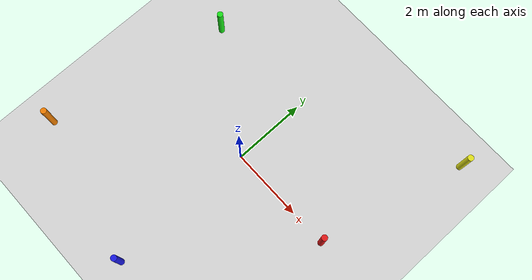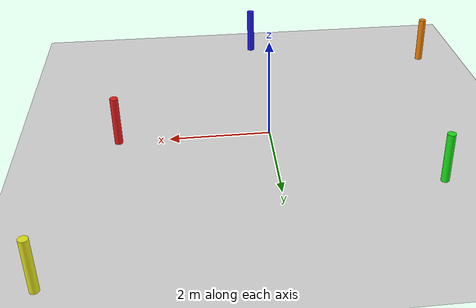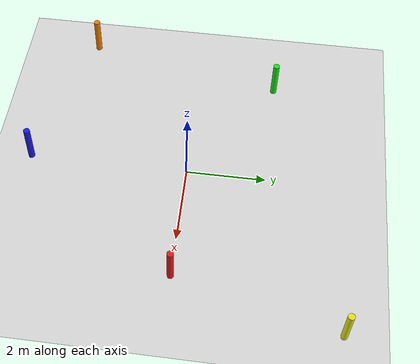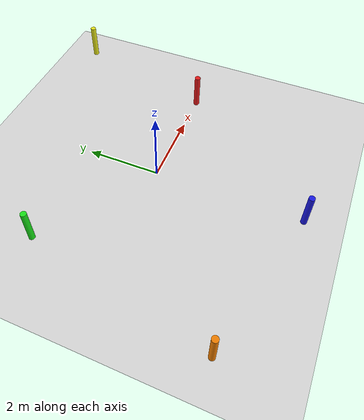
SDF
<?xml version="1.0"?>
<sdf version="1.8">
  <world name="landmark_world">
    <!-- Open space with AprilTag-style landmarks for Ch3, Ch6 -->
    <physics name="1ms" type="ignored">
      <max_step_size>0.001</max_step_size>
      <real_time_factor>1.0</real_time_factor>
    </physics>
    <plugin filename="gz-sim-physics-system" name="gz::sim::systems::Physics"/>
    <plugin filename="gz-sim-user-commands-system" name="gz::sim::systems::UserCommands"/>
    <plugin filename="gz-sim-scene-broadcaster-system" name="gz::sim::systems::SceneBroadcaster"/>
    <plugin filename="gz-sim-sensors-system" name="gz::sim::systems::Sensors">
      <render_engine>ogre2</render_engine>
    </plugin>

    <light type="directional" name="sun">
      <cast_shadows>true</cast_shadows>
      <pose>0 0 10 0 0 0</pose>
      <diffuse>0.8 0.8 0.8 1</diffuse>
      <specular>0.2 0.2 0.2 1</specular>
      <direction>-0.5 0.1 -0.9</direction>
    </light>

    <model name="ground_plane">
      <static>true</static>
      <link name="link">
        <collision name="collision">
          <geometry><plane><normal>0 0 1</normal><size>30 30</size></plane></geometry>
        </collision>
        <visual name="visual">
          <geometry><plane><normal>0 0 1</normal><size>30 30</size></plane></geometry>
          <material><ambient>0.85 0.85 0.85 1</ambient></material>
        </visual>
      </link>
    </model>

    <!-- 5 unique landmarks at known positions (for EKF/UKF range-bearing) -->
    <!-- Landmark 0: (3, 0) — RED -->
    <model name="lm_0">
      <static>true</static>
      <pose>3 0 0.5 0 0 0</pose>
      <link name="link">
        <collision name="c"><geometry><cylinder><radius>0.08</radius><length>1.0</length></cylinder></geometry></collision>
        <visual name="v">
          <geometry><cylinder><radius>0.08</radius><length>1.0</length></cylinder></geometry>
          <material><ambient>0.9 0.1 0.1 1</ambient><diffuse>0.9 0.1 0.1 1</diffuse></material>
        </visual>
      </link>
    </model>

    <!-- Landmark 1: (-3, 2) — GREEN -->
    <model name="lm_1">
      <static>true</static>
      <pose>-3 2 0.5 0 0 0</pose>
      <link name="link">
        <collision name="c"><geometry><cylinder><radius>0.08</radius><length>1.0</length></cylinder></geometry></collision>
        <visual name="v">
          <geometry><cylinder><radius>0.08</radius><length>1.0</length></cylinder></geometry>
          <material><ambient>0.1 0.9 0.1 1</ambient><diffuse>0.1 0.9 0.1 1</diffuse></material>
        </visual>
      </link>
    </model>

    <!-- Landmark 2: (0, -4) — BLUE -->
    <model name="lm_2">
      <static>true</static>
      <pose>0 -4 0.5 0 0 0</pose>
      <link name="link">
        <collision name="c"><geometry><cylinder><radius>0.08</radius><length>1.0</length></cylinder></geometry></collision>
        <visual name="v">
          <geometry><cylinder><radius>0.08</radius><length>1.0</length></cylinder></geometry>
          <material><ambient>0.1 0.1 0.9 1</ambient><diffuse>0.1 0.1 0.9 1</diffuse></material>
        </visual>
      </link>
    </model>

    <!-- Landmark 3: (4, 4) — YELLOW -->
    <model name="lm_3">
      <static>true</static>
      <pose>4 4 0.5 0 0 0</pose>
      <link name="link">
        <collision name="c"><geometry><cylinder><radius>0.08</radius><length>1.0</length></cylinder></geometry></collision>
        <visual name="v">
          <geometry><cylinder><radius>0.08</radius><length>1.0</length></cylinder></geometry>
          <material><ambient>0.9 0.9 0.1 1</ambient><diffuse>0.9 0.9 0.1 1</diffuse></material>
        </visual>
      </link>
    </model>

    <!-- Landmark 4: (-4, -3) — ORANGE -->
    <model name="lm_4">
      <static>true</static>
      <pose>-4 -3 0.5 0 0 0</pose>
      <link name="link">
        <collision name="c"><geometry><cylinder><radius>0.08</radius><length>1.0</length></cylinder></geometry></collision>
        <visual name="v">
          <geometry><cylinder><radius>0.08</radius><length>1.0</length></cylinder></geometry>
          <material><ambient>0.95 0.5 0.0 1</ambient><diffuse>0.95 0.5 0.0 1</diffuse></material>
        </visual>
      </link>
    </model>

  </world>
</sdf>
